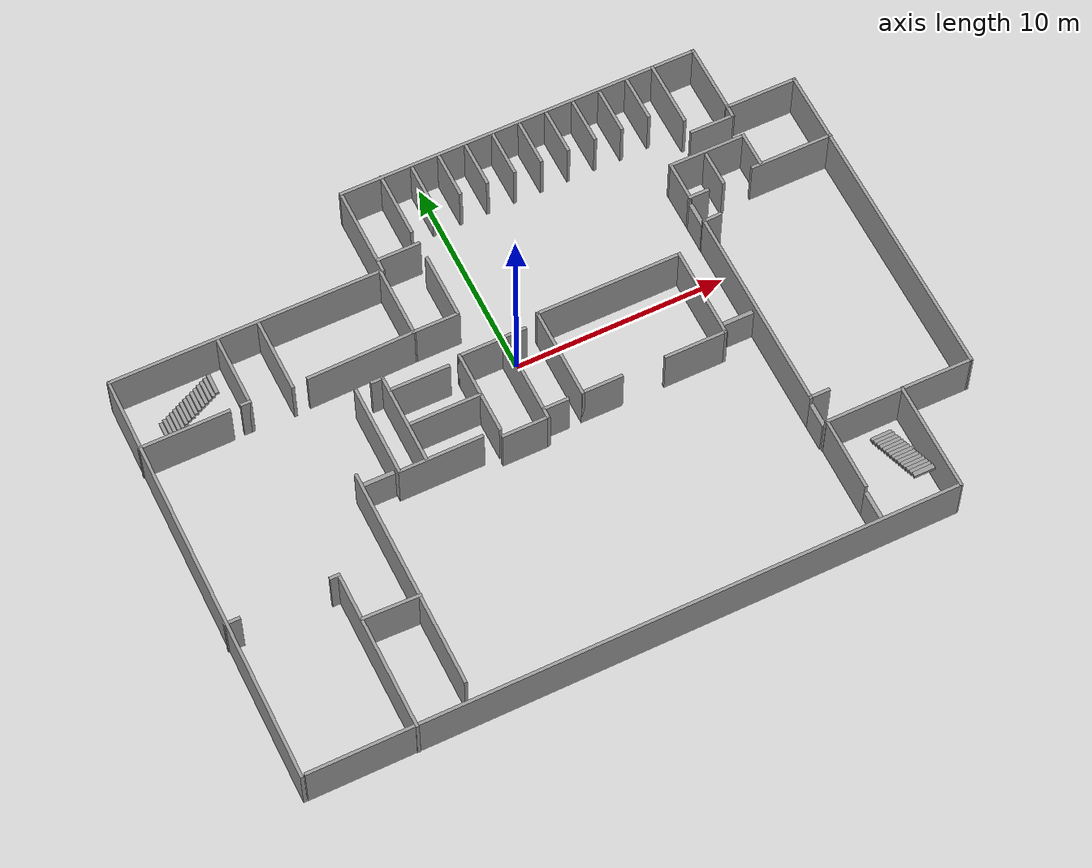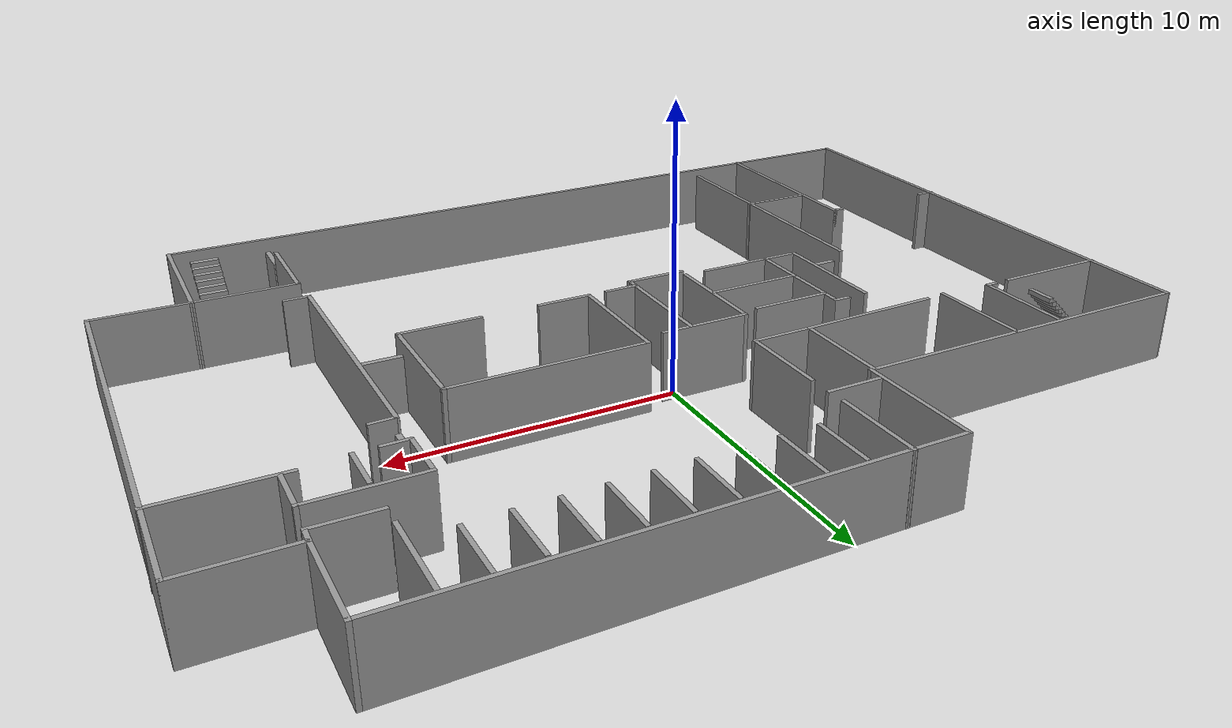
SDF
<sdf version="1.6">
 <model name="REPF">
  <pose>0.136394 -2.31263 0 0 -0 0</pose>
  <link name="Door_14">
   <collision name="Door_14_Collision">
    <geometry><box><size>1.54 0.2 2</size></box></geometry>
    <pose>0 0 1 0 -0 0</pose>
   </collision>
   <visual name="Door_14_Visual">
    <pose>0 0 1 0 -0 0</pose>
    <geometry><box><size>1.54 0.2 2</size></box></geometry>
    <material>
     <script><uri>file://media/materials/scripts/gazebo.material</uri><name>Gazebo/Grey</name></script>
    </material>
   </visual>
   <pose>9.87614 -11.4196 0 0 0 -1.57041</pose>
  </link>
  <link name="Door_15">
   <collision name="Door_15_Collision">
    <geometry><box><size>1.61 0.2 2</size></box></geometry>
    <pose>0 0 1 0 -0 0</pose>
   </collision>
   <visual name="Door_15_Visual">
    <pose>0 0 1 0 -0 0</pose>
    <geometry><box><size>1.61 0.2 2</size></box></geometry>
    <material>
     <script><uri>file://media/materials/scripts/gazebo.material</uri><name>Gazebo/Grey</name></script>
    </material>
   </visual>
   <pose>8.90711 -0.726906 0 0 -0 0</pose>
  </link>
  <link name="Door_16">
   <collision name="Door_16_Collision">
    <geometry><box><size>1.5325 0.2 2</size></box></geometry>
    <pose>0 0 1 0 -0 0</pose>
   </collision>
   <visual name="Door_16_Visual">
    <pose>0 0 1 0 -0 0</pose>
    <geometry><box><size>1.5325 0.2 2</size></box></geometry>
    <material>
     <script><uri>file://media/materials/scripts/gazebo.material</uri><name>Gazebo/Grey</name></script>
    </material>
   </visual>
   <pose>-8.28485 -1.07579 0 0 -0 3.13609</pose>
  </link>
  <link name="Door_17">
   <collision name="Door_17_Collision">
    <geometry><box><size>1.17772 0.2 2</size></box></geometry>
    <pose>0 0 1 0 -0 0</pose>
   </collision>
   <visual name="Door_17_Visual">
    <pose>0 0 1 0 -0 0</pose>
    <geometry><box><size>1.17772 0.2 2</size></box></geometry>
    <material>
     <script><uri>file://media/materials/scripts/gazebo.material</uri><name>Gazebo/Grey</name></script>
    </material>
   </visual>
   <pose>9.81582 -6.48242 0 0 0 -1.5708</pose>
  </link>
  <link name="Door_18">
   <collision name="Door_18_Collision">
    <geometry><box><size>1.20417 0.2 2</size></box></geometry>
    <pose>0 0 1 0 -0 0</pose>
   </collision>
   <visual name="Door_18_Visual">
    <pose>0 0 1 0 -0 0</pose>
    <geometry><box><size>1.20417 0.2 2</size></box></geometry>
    <material>
     <script><uri>file://media/materials/scripts/gazebo.material</uri><name>Gazebo/Grey</name></script>
    </material>
   </visual>
   <pose>9.81561 4.72577 0 0 0 -1.57209</pose>
  </link>
  <link name="Stairs_5">
   <visual name="Stairs_5_Visual_0">
    <pose>12.3958 -7.74275 0.083333 0 -0 0</pose>
    <geometry><box><size>1 0.233333 0.166667</size></box></geometry>
    <material>
     <script><uri>file://media/materials/scripts/gazebo.material</uri><name>Gazebo/Grey</name></script>
     <ambient>1 1 1 1</ambient>
    </material>
   </visual>
   <collision name="Stairs_5_Collision_0">
    <geometry><box><size>1 0.233333 0.166667</size></box></geometry>
    <pose>12.3958 -7.74275 0.083333 0 -0 0</pose>
   </collision>
   <visual name="Stairs_5_Visual_1">
    <pose>12.3958 -7.97608 0.25 0 -0 0</pose>
    <geometry><box><size>1 0.233333 0.166667</size></box></geometry>
    <material>
     <script><uri>file://media/materials/scripts/gazebo.material</uri><name>Gazebo/Grey</name></script>
     <ambient>1 1 1 1</ambient>
    </material>
   </visual>
   <collision name="Stairs_5_Collision_1">
    <geometry><box><size>1 0.233333 0.166667</size></box></geometry>
    <pose>12.3958 -7.97608 0.25 0 -0 0</pose>
   </collision>
   <visual name="Stairs_5_Visual_2">
    <pose>12.3958 -8.20942 0.416667 0 -0 0</pose>
    <geometry><box><size>1 0.233333 0.166667</size></box></geometry>
    <material>
     <script><uri>file://media/materials/scripts/gazebo.material</uri><name>Gazebo/Grey</name></script>
     <ambient>1 1 1 1</ambient>
    </material>
   </visual>
   <collision name="Stairs_5_Collision_2">
    <geometry><box><size>1 0.233333 0.166667</size></box></geometry>
    <pose>12.3958 -8.20942 0.416667 0 -0 0</pose>
   </collision>
   <visual name="Stairs_5_Visual_3">
    <pose>12.3958 -8.44275 0.583333 0 -0 0</pose>
    <geometry><box><size>1 0.233333 0.166667</size></box></geometry>
    <material>
     <script><uri>file://media/materials/scripts/gazebo.material</uri><name>Gazebo/Grey</name></script>
     <ambient>1 1 1 1</ambient>
    </material>
   </visual>
   <collision name="Stairs_5_Collision_3">
    <geometry><box><size>1 0.233333 0.166667</size></box></geometry>
    <pose>12.3958 -8.44275 0.583333 0 -0 0</pose>
   </collision>
   <visual name="Stairs_5_Visual_4">
    <pose>12.3958 -8.67608 0.75 0 -0 0</pose>
    <geometry><box><size>1 0.233333 0.166667</size></box></geometry>
    <material>
     <script><uri>file://media/materials/scripts/gazebo.material</uri><name>Gazebo/Grey</name></script>
     <ambient>1 1 1 1</ambient>
    </material>
   </visual>
   <collision name="Stairs_5_Collision_4">
    <geometry><box><size>1 0.233333 0.166667</size></box></geometry>
    <pose>12.3958 -8.67608 0.75 0 -0 0</pose>
   </collision>
   <visual name="Stairs_5_Visual_5">
    <pose>12.3958 -8.90942 0.916667 0 -0 0</pose>
    <geometry><box><size>1 0.233333 0.166667</size></box></geometry>
    <material>
     <script><uri>file://media/materials/scripts/gazebo.material</uri><name>Gazebo/Grey</name></script>
     <ambient>1 1 1 1</ambient>
    </material>
   </visual>
   <collision name="Stairs_5_Collision_5">
    <geometry><box><size>1 0.233333 0.166667</size></box></geometry>
    <pose>12.3958 -8.90942 0.916667 0 -0 0</pose>
   </collision>
   <visual name="Stairs_5_Visual_6">
    <pose>12.3958 -9.14275 1.08333 0 -0 0</pose>
    <geometry><box><size>1 0.233333 0.166667</size></box></geometry>
    <material>
     <script><uri>file://media/materials/scripts/gazebo.material</uri><name>Gazebo/Grey</name></script>
     <ambient>1 1 1 1</ambient>
    </material>
   </visual>
   <collision name="Stairs_5_Collision_6">
    <geometry><box><size>1 0.233333 0.166667</size></box></geometry>
    <pose>12.3958 -9.14275 1.08333 0 -0 0</pose>
   </collision>
   <visual name="Stairs_5_Visual_7">
    <pose>12.3958 -9.37608 1.25 0 -0 0</pose>
    <geometry><box><size>1 0.233333 0.166667</size></box></geometry>
    <material>
     <script><uri>file://media/materials/scripts/gazebo.material</uri><name>Gazebo/Grey</name></script>
     <ambient>1 1 1 1</ambient>
    </material>
   </visual>
   <collision name="Stairs_5_Collision_7">
    <geometry><box><size>1 0.233333 0.166667</size></box></geometry>
    <pose>12.3958 -9.37608 1.25 0 -0 0</pose>
   </collision>
   <visual name="Stairs_5_Visual_8">
    <pose>12.3958 -9.60942 1.41667 0 -0 0</pose>
    <geometry><box><size>1 0.233333 0.166667</size></box></geometry>
    <material>
     <script><uri>file://media/materials/scripts/gazebo.material</uri><name>Gazebo/Grey</name></script>
     <ambient>1 1 1 1</ambient>
    </material>
   </visual>
   <collision name="Stairs_5_Collision_8">
    <geometry><box><size>1 0.233333 0.166667</size></box></geometry>
    <pose>12.3958 -9.60942 1.41667 0 -0 0</pose>
   </collision>
   <visual name="Stairs_5_Visual_9">
    <pose>12.3958 -9.84275 1.58333 0 -0 0</pose>
    <geometry><box><size>1 0.233333 0.166667</size></box></geometry>
    <material>
     <script><uri>file://media/materials/scripts/gazebo.material</uri><name>Gazebo/Grey</name></script>
     <ambient>1 1 1 1</ambient>
    </material>
   </visual>
   <collision name="Stairs_5_Collision_9">
    <geometry><box><size>1 0.233333 0.166667</size></box></geometry>
    <pose>12.3958 -9.84275 1.58333 0 -0 0</pose>
   </collision>
   <visual name="Stairs_5_Visual_10">
    <pose>12.3958 -10.0761 1.75 0 -0 0</pose>
    <geometry><box><size>1 0.233333 0.166667</size></box></geometry>
    <material>
     <script><uri>file://media/materials/scripts/gazebo.material</uri><name>Gazebo/Grey</name></script>
     <ambient>1 1 1 1</ambient>
    </material>
   </visual>
   <collision name="Stairs_5_Collision_10">
    <geometry><box><size>1 0.233333 0.166667</size></box></geometry>
    <pose>12.3958 -10.0761 1.75 0 -0 0</pose>
   </collision>
   <visual name="Stairs_5_Visual_11">
    <pose>12.3958 -10.3094 1.91667 0 -0 0</pose>
    <geometry><box><size>1 0.233333 0.166667</size></box></geometry>
    <material>
     <script><uri>file://media/materials/scripts/gazebo.material</uri><name>Gazebo/Grey</name></script>
     <ambient>1 1 1 1</ambient>
    </material>
   </visual>
   <collision name="Stairs_5_Collision_11">
    <geometry><box><size>1 0.233333 0.166667</size></box></geometry>
    <pose>12.3958 -10.3094 1.91667 0 -0 0</pose>
   </collision>
   <visual name="Stairs_5_Visual_12">
    <pose>12.3958 -10.5427 2.08333 0 -0 0</pose>
    <geometry><box><size>1 0.233333 0.166667</size></box></geometry>
    <material>
     <script><uri>file://media/materials/scripts/gazebo.material</uri><name>Gazebo/Grey</name></script>
     <ambient>1 1 1 1</ambient>
    </material>
   </visual>
   <collision name="Stairs_5_Collision_12">
    <geometry><box><size>1 0.233333 0.166667</size></box></geometry>
    <pose>12.3958 -10.5427 2.08333 0 -0 0</pose>
   </collision>
   <visual name="Stairs_5_Visual_13">
    <pose>12.3958 -10.7761 2.25 0 -0 0</pose>
    <geometry><box><size>1 0.233333 0.166667</size></box></geometry>
    <material>
     <script><uri>file://media/materials/scripts/gazebo.material</uri><name>Gazebo/Grey</name></script>
     <ambient>1 1 1 1</ambient>
    </material>
   </visual>
   <collision name="Stairs_5_Collision_13">
    <geometry><box><size>1 0.233333 0.166667</size></box></geometry>
    <pose>12.3958 -10.7761 2.25 0 -0 0</pose>
   </collision>
   <visual name="Stairs_5_Visual_14">
    <pose>12.3958 -11.0094 2.41667 0 -0 0</pose>
    <geometry><box><size>1 0.233333 0.166667</size></box></geometry>
    <material>
     <script><uri>file://media/materials/scripts/gazebo.material</uri><name>Gazebo/Grey</name></script>
     <ambient>1 1 1 1</ambient>
    </material>
   </visual>
   <collision name="Stairs_5_Collision_14">
    <geometry><box><size>1 0.233333 0.166667</size></box></geometry>
    <pose>12.3958 -11.0094 2.41667 0 -0 0</pose>
   </collision>
  </link>
  <link name="Stairs_6">
   <visual name="Stairs_6_Visual_0">
    <pose>-15.1717 5.94079 0.083333 0 -0 1.5708</pose>
    <geometry><box><size>1 0.171652 0.166667</size></box></geometry>
    <material>
     <script><uri>file://media/materials/scripts/gazebo.material</uri><name>Gazebo/Grey</name></script>
     <ambient>1 1 1 1</ambient>
    </material>
   </visual>
   <collision name="Stairs_6_Collision_0">
    <geometry><box><size>1 0.171652 0.166667</size></box></geometry>
    <pose>-15.1717 5.94079 0.083333 0 -0 1.5708</pose>
   </collision>
   <visual name="Stairs_6_Visual_1">
    <pose>-15.0001 5.94079 0.25 0 -0 1.5708</pose>
    <geometry><box><size>1 0.171652 0.166667</size></box></geometry>
    <material>
     <script><uri>file://media/materials/scripts/gazebo.material</uri><name>Gazebo/Grey</name></script>
     <ambient>1 1 1 1</ambient>
    </material>
   </visual>
   <collision name="Stairs_6_Collision_1">
    <geometry><box><size>1 0.171652 0.166667</size></box></geometry>
    <pose>-15.0001 5.94079 0.25 0 -0 1.5708</pose>
   </collision>
   <visual name="Stairs_6_Visual_2">
    <pose>-14.8284 5.94079 0.416667 0 -0 1.5708</pose>
    <geometry><box><size>1 0.171652 0.166667</size></box></geometry>
    <material>
     <script><uri>file://media/materials/scripts/gazebo.material</uri><name>Gazebo/Grey</name></script>
     <ambient>1 1 1 1</ambient>
    </material>
   </visual>
   <collision name="Stairs_6_Collision_2">
    <geometry><box><size>1 0.171652 0.166667</size></box></geometry>
    <pose>-14.8284 5.94079 0.416667 0 -0 1.5708</pose>
   </collision>
   <visual name="Stairs_6_Visual_3">
    <pose>-14.6568 5.94079 0.583333 0 -0 1.5708</pose>
    <geometry><box><size>1 0.171652 0.166667</size></box></geometry>
    <material>
     <script><uri>file://media/materials/scripts/gazebo.material</uri><name>Gazebo/Grey</name></script>
     <ambient>1 1 1 1</ambient>
    </material>
   </visual>
   <collision name="Stairs_6_Collision_3">
    <geometry><box><size>1 0.171652 0.166667</size></box></geometry>
    <pose>-14.6568 5.94079 0.583333 0 -0 1.5708</pose>
   </collision>
   <visual name="Stairs_6_Visual_4">
    <pose>-14.4851 5.94079 0.75 0 -0 1.5708</pose>
    <geometry><box><size>1 0.171652 0.166667</size></box></geometry>
    <material>
     <script><uri>file://media/materials/scripts/gazebo.material</uri><name>Gazebo/Grey</name></script>
     <ambient>1 1 1 1</ambient>
    </material>
   </visual>
   <collision name="Stairs_6_Collision_4">
    <geometry><box><size>1 0.171652 0.166667</size></box></geometry>
    <pose>-14.4851 5.94079 0.75 0 -0 1.5708</pose>
   </collision>
   <visual name="Stairs_6_Visual_5">
    <pose>-14.3135 5.94079 0.916667 0 -0 1.5708</pose>
    <geometry><box><size>1 0.171652 0.166667</size></box></geometry>
    <material>
     <script><uri>file://media/materials/scripts/gazebo.material</uri><name>Gazebo/Grey</name></script>
     <ambient>1 1 1 1</ambient>
    </material>
   </visual>
   <collision name="Stairs_6_Collision_5">
    <geometry><box><size>1 0.171652 0.166667</size></box></geometry>
    <pose>-14.3135 5.94079 0.916667 0 -0 1.5708</pose>
   </collision>
   <visual name="Stairs_6_Visual_6">
    <pose>-14.1418 5.94079 1.08333 0 -0 1.5708</pose>
    <geometry><box><size>1 0.171652 0.166667</size></box></geometry>
    <material>
     <script><uri>file://media/materials/scripts/gazebo.material</uri><name>Gazebo/Grey</name></script>
     <ambient>1 1 1 1</ambient>
    </material>
   </visual>
   <collision name="Stairs_6_Collision_6">
    <geometry><box><size>1 0.171652 0.166667</size></box></geometry>
    <pose>-14.1418 5.94079 1.08333 0 -0 1.5708</pose>
   </collision>
   <visual name="Stairs_6_Visual_7">
    <pose>-13.9702 5.94079 1.25 0 -0 1.5708</pose>
    <geometry><box><size>1 0.171652 0.166667</size></box></geometry>
    <material>
     <script><uri>file://media/materials/scripts/gazebo.material</uri><name>Gazebo/Grey</name></script>
     <ambient>1 1 1 1</ambient>
    </material>
   </visual>
   <collision name="Stairs_6_Collision_7">
    <geometry><box><size>1 0.171652 0.166667</size></box></geometry>
    <pose>-13.9702 5.94079 1.25 0 -0 1.5708</pose>
   </collision>
   <visual name="Stairs_6_Visual_8">
    <pose>-13.7985 5.94079 1.41667 0 -0 1.5708</pose>
    <geometry><box><size>1 0.171652 0.166667</size></box></geometry>
    <material>
     <script><uri>file://media/materials/scripts/gazebo.material</uri><name>Gazebo/Grey</name></script>
     <ambient>1 1 1 1</ambient>
    </material>
   </visual>
   <collision name="Stairs_6_Collision_8">
    <geometry><box><size>1 0.171652 0.166667</size></box></geometry>
    <pose>-13.7985 5.94079 1.41667 0 -0 1.5708</pose>
   </collision>
   <visual name="Stairs_6_Visual_9">
    <pose>-13.6269 5.94079 1.58333 0 -0 1.5708</pose>
    <geometry><box><size>1 0.171652 0.166667</size></box></geometry>
    <material>
     <script><uri>file://media/materials/scripts/gazebo.material</uri><name>Gazebo/Grey</name></script>
     <ambient>1 1 1 1</ambient>
    </material>
   </visual>
   <collision name="Stairs_6_Collision_9">
    <geometry><box><size>1 0.171652 0.166667</size></box></geometry>
    <pose>-13.6269 5.94079 1.58333 0 -0 1.5708</pose>
   </collision>
   <visual name="Stairs_6_Visual_10">
    <pose>-13.4552 5.94079 1.75 0 -0 1.5708</pose>
    <geometry><box><size>1 0.171652 0.166667</size></box></geometry>
    <material>
     <script><uri>file://media/materials/scripts/gazebo.material</uri><name>Gazebo/Grey</name></script>
     <ambient>1 1 1 1</ambient>
    </material>
   </visual>
   <collision name="Stairs_6_Collision_10">
    <geometry><box><size>1 0.171652 0.166667</size></box></geometry>
    <pose>-13.4552 5.94079 1.75 0 -0 1.5708</pose>
   </collision>
   <visual name="Stairs_6_Visual_11">
    <pose>-13.2835 5.94079 1.91667 0 -0 1.5708</pose>
    <geometry><box><size>1 0.171652 0.166667</size></box></geometry>
    <material>
     <script><uri>file://media/materials/scripts/gazebo.material</uri><name>Gazebo/Grey</name></script>
     <ambient>1 1 1 1</ambient>
    </material>
   </visual>
   <collision name="Stairs_6_Collision_11">
    <geometry><box><size>1 0.171652 0.166667</size></box></geometry>
    <pose>-13.2835 5.94079 1.91667 0 -0 1.5708</pose>
   </collision>
   <visual name="Stairs_6_Visual_12">
    <pose>-13.1119 5.94079 2.08333 0 -0 1.5708</pose>
    <geometry><box><size>1 0.171652 0.166667</size></box></geometry>
    <material>
     <script><uri>file://media/materials/scripts/gazebo.material</uri><name>Gazebo/Grey</name></script>
     <ambient>1 1 1 1</ambient>
    </material>
   </visual>
   <collision name="Stairs_6_Collision_12">
    <geometry><box><size>1 0.171652 0.166667</size></box></geometry>
    <pose>-13.1119 5.94079 2.08333 0 -0 1.5708</pose>
   </collision>
   <visual name="Stairs_6_Visual_13">
    <pose>-12.9402 5.94079 2.25 0 -0 1.5708</pose>
    <geometry><box><size>1 0.171652 0.166667</size></box></geometry>
    <material>
     <script><uri>file://media/materials/scripts/gazebo.material</uri><name>Gazebo/Grey</name></script>
     <ambient>1 1 1 1</ambient>
    </material>
   </visual>
   <collision name="Stairs_6_Collision_13">
    <geometry><box><size>1 0.171652 0.166667</size></box></geometry>
    <pose>-12.9402 5.94079 2.25 0 -0 1.5708</pose>
   </collision>
   <visual name="Stairs_6_Visual_14">
    <pose>-12.7686 5.94079 2.41667 0 -0 1.5708</pose>
    <geometry><box><size>1 0.171652 0.166667</size></box></geometry>
    <material>
     <script><uri>file://media/materials/scripts/gazebo.material</uri><name>Gazebo/Grey</name></script>
     <ambient>1 1 1 1</ambient>
    </material>
   </visual>
   <collision name="Stairs_6_Collision_14">
    <geometry><box><size>1 0.171652 0.166667</size></box></geometry>
    <pose>-12.7686 5.94079 2.41667 0 -0 1.5708</pose>
   </collision>
  </link>
  <link name="Wall_124">
   <collision name="Wall_124_Collision">
    <geometry><box><size>30.25 0.15 2.5</size></box></geometry>
    <pose>0 0 1.25 0 -0 0</pose>
   </collision>
   <visual name="Wall_124_Visual">
    <pose>0 0 1.25 0 -0 0</pose>
    <geometry><box><size>30.25 0.15 2.5</size></box></geometry>
    <material>
     <script><uri>file://media/materials/scripts/gazebo.material</uri><name>Gazebo/Grey</name></script>
     <ambient>1 1 1 1</ambient>
    </material>
   </visual>
   <pose>-1.57381 -12.2797 0 0 -0 0</pose>
  </link>
  <link name="Wall_125">
   <collision name="Wall_125_Collision">
    <geometry><box><size>5.28501 0.15 2.5</size></box></geometry>
    <pose>0 0 1.25 0 -0 0</pose>
   </collision>
   <visual name="Wall_125_Visual">
    <pose>0 0 1.25 0 -0 0</pose>
    <geometry><box><size>5.28501 0.15 2.5</size></box></geometry>
    <material>
     <script><uri>file://media/materials/scripts/gazebo.material</uri><name>Gazebo/Grey</name></script>
     <ambient>1 1 1 1</ambient>
    </material>
   </visual>
   <pose>13.4849 -9.71218 0 0 -0 1.56739</pose>
  </link>
  <link name="Wall_126">
   <collision name="Wall_126_Collision">
    <geometry><box><size>3.48324 0.15 2.5</size></box></geometry>
    <pose>0 0 1.25 0 -0 0</pose>
   </collision>
   <visual name="Wall_126_Visual">
    <pose>0 0 1.25 0 -0 0</pose>
    <geometry><box><size>3.48324 0.15 2.5</size></box></geometry>
    <material>
     <script><uri>file://media/materials/scripts/gazebo.material</uri><name>Gazebo/Grey</name></script>
     <ambient>1 1 1 1</ambient>
    </material>
   </visual>
   <pose>15.1599 -7.16219 0 0 0 -0.010496</pose>
  </link>
  <link name="Wall_127">
   <collision name="Wall_127_Collision">
    <geometry><box><size>16.25 0.15 2.5</size></box></geometry>
    <pose>0 0 1.25 0 -0 0</pose>
   </collision>
   <visual name="Wall_127_Visual">
    <pose>0 0 1.25 0 -0 0</pose>
    <geometry><box><size>16.25 0.15 2.5</size></box></geometry>
    <material>
     <script><uri>file://media/materials/scripts/gazebo.material</uri><name>Gazebo/Grey</name></script>
     <ambient>1 1 1 1</ambient>
    </material>
   </visual>
   <pose>16.8262 0.870325 0 0 -0 1.5708</pose>
  </link>
  <link name="Wall_128">
   <collision name="Wall_128_Collision">
    <geometry><box><size>3.5 0.15 2.5</size></box></geometry>
    <pose>0 0 1.25 0 -0 0</pose>
   </collision>
   <visual name="Wall_128_Visual">
    <pose>0 0 1.25 0 -0 0</pose>
    <geometry><box><size>3.5 0.15 2.5</size></box></geometry>
    <material>
     <script><uri>file://media/materials/scripts/gazebo.material</uri><name>Gazebo/Grey</name></script>
     <ambient>1 1 1 1</ambient>
    </material>
   </visual>
   <pose>15.1512 8.92033 0 0 -0 3.14159</pose>
  </link>
  <link name="Wall_129">
   <collision name="Wall_129_Collision">
    <geometry><box><size>3.5 0.15 2.5</size></box></geometry>
    <pose>0 0 1.25 0 -0 0</pose>
   </collision>
   <visual name="Wall_129_Visual">
    <pose>0 0 1.25 0 -0 0</pose>
    <geometry><box><size>3.5 0.15 2.5</size></box></geometry>
    <material>
     <script><uri>file://media/materials/scripts/gazebo.material</uri><name>Gazebo/Grey</name></script>
     <ambient>1 1 1 1</ambient>
    </material>
   </visual>
   <pose>13.4762 10.5953 0 0 -0 1.5708</pose>
  </link>
  <link name="Wall_130">
   <collision name="Wall_130_Collision">
    <geometry><box><size>17.5 0.15 2.5</size></box></geometry>
    <pose>0 0 1.25 0 -0 0</pose>
   </collision>
   <visual name="Wall_130_Visual">
    <pose>0 0 1.25 0 -0 0</pose>
    <geometry><box><size>17.5 0.15 2.5</size></box></geometry>
    <material>
     <script><uri>file://media/materials/scripts/gazebo.material</uri><name>Gazebo/Grey</name></script>
     <ambient>1 1 1 1</ambient>
    </material>
   </visual>
   <pose>4.80119 12.2703 0 0 -0 3.14159</pose>
  </link>
  <link name="Wall_131">
   <collision name="Wall_131_Collision">
    <geometry><box><size>4.5 0.15 2.5</size></box></geometry>
    <pose>0 0 1.25 0 -0 0</pose>
   </collision>
   <visual name="Wall_131_Visual">
    <pose>0 0 1.25 0 -0 0</pose>
    <geometry><box><size>4.5 0.15 2.5</size></box></geometry>
    <material>
     <script><uri>file://media/materials/scripts/gazebo.material</uri><name>Gazebo/Grey</name></script>
     <ambient>1 1 1 1</ambient>
    </material>
   </visual>
   <pose>-3.87381 10.0953 0 0 0 -1.5708</pose>
  </link>
  <link name="Wall_132">
   <collision name="Wall_132_Collision">
    <geometry><box><size>13 0.15 2.5</size></box></geometry>
    <pose>0 0 1.25 0 -0 0</pose>
   </collision>
   <visual name="Wall_132_Visual">
    <pose>0 0 1.25 0 -0 0</pose>
    <geometry><box><size>13 0.15 2.5</size></box></geometry>
    <material>
     <script><uri>file://media/materials/scripts/gazebo.material</uri><name>Gazebo/Grey</name></script>
     <ambient>1 1 1 1</ambient>
    </material>
   </visual>
   <pose>-10.2988 7.92033 0 0 -0 3.14159</pose>
  </link>
  <link name="Wall_133">
   <collision name="Wall_133_Collision">
    <geometry><box><size>20.3501 0.15 2.5</size></box></geometry>
    <pose>0 0 1.25 0 -0 0</pose>
   </collision>
   <visual name="Wall_133_Visual">
    <pose>0 0 1.25 0 -0 0</pose>
    <geometry><box><size>20.3501 0.15 2.5</size></box></geometry>
    <material>
     <script><uri>file://media/materials/scripts/gazebo.material</uri><name>Gazebo/Grey</name></script>
     <ambient>1 1 1 1</ambient>
    </material>
   </visual>
   <pose>-16.7787 -2.17968 0 0 0 -1.57624</pose>
  </link>
  <link name="Wall_138">
   <collision name="Wall_138_Collision">
    <geometry><box><size>0.75 0.15 2.5</size></box></geometry>
    <pose>0 0 1.25 0 -0 0</pose>
   </collision>
   <visual name="Wall_138_Visual">
    <pose>0 0 1.25 0 -0 0</pose>
    <geometry><box><size>0.75 0.15 2.5</size></box></geometry>
    <material>
     <script><uri>file://media/materials/scripts/gazebo.material</uri><name>Gazebo/Grey</name></script>
     <ambient>1 1 1 1</ambient>
    </material>
   </visual>
   <pose>-16.5471 -4.71747 0 0 -0 0</pose>
  </link>
  <link name="Wall_140">
   <collision name="Wall_140_Collision">
    <geometry><box><size>0.5 0.15 2.5</size></box></geometry>
    <pose>0 0 1.25 0 -0 0</pose>
   </collision>
   <visual name="Wall_140_Visual">
    <pose>0 0 1.25 0 -0 0</pose>
    <geometry><box><size>0.5 0.15 2.5</size></box></geometry>
    <material>
     <script><uri>file://media/materials/scripts/gazebo.material</uri><name>Gazebo/Grey</name></script>
     <ambient>1 1 1 1</ambient>
    </material>
   </visual>
   <pose>-11.8985 -4.70432 0 0 -0 0</pose>
  </link>
  <link name="Wall_141">
   <collision name="Wall_141_Collision">
    <geometry><box><size>7.75 0.15 2.5</size></box></geometry>
    <pose>0 0 1.25 0 -0 0</pose>
   </collision>
   <visual name="Wall_141_Visual">
    <pose>0 0 1.25 0 -0 0</pose>
    <geometry><box><size>7.75 0.15 2.5</size></box></geometry>
    <material>
     <script><uri>file://media/materials/scripts/gazebo.material</uri><name>Gazebo/Grey</name></script>
     <ambient>1 1 1 1</ambient>
    </material>
   </visual>
   <pose>-11.7235 -8.50432 0 0 0 -1.5708</pose>
  </link>
  <link name="Wall_145">
   <collision name="Wall_145_Collision">
    <geometry><box><size>2.75 0.15 2.5</size></box></geometry>
    <pose>0 0 1.25 0 -0 0</pose>
   </collision>
   <visual name="Wall_145_Visual">
    <pose>0 0 1.25 0 -0 0</pose>
    <geometry><box><size>2.75 0.15 2.5</size></box></geometry>
    <material>
     <script><uri>file://media/materials/scripts/gazebo.material</uri><name>Gazebo/Grey</name></script>
     <ambient>1 1 1 1</ambient>
    </material>
   </visual>
   <pose>-10.3878 -7.0019 0 0 0 -0.026901</pose>
  </link>
  <link name="Wall_149">
   <collision name="Wall_149_Collision">
    <geometry><box><size>10.75 0.15 2.5</size></box></geometry>
    <pose>0 0 1.25 0 -0 0</pose>
   </collision>
   <visual name="Wall_149_Visual">
    <pose>0 0 1.25 0 -0 0</pose>
    <geometry><box><size>10.75 0.15 2.5</size></box></geometry>
    <material>
     <script><uri>file://media/materials/scripts/gazebo.material</uri><name>Gazebo/Grey</name></script>
     <ambient>1 1 1 1</ambient>
    </material>
   </visual>
   <pose>-9.11763 -6.07786 0 0 0 -1.5708</pose>
  </link>
  <link name="Wall_151">
   <collision name="Wall_151_Collision">
    <geometry><box><size>3 0.15 2.5</size></box></geometry>
    <pose>0 0 1.25 0 -0 0</pose>
   </collision>
   <visual name="Wall_151_Visual">
    <pose>0 0 1.25 0 -0 0</pose>
    <geometry><box><size>3 0.15 2.5</size></box></geometry>
    <material>
     <script><uri>file://media/materials/scripts/gazebo.material</uri><name>Gazebo/Grey</name></script>
     <ambient>1 1 1 1</ambient>
    </material>
   </visual>
   <pose>6.61332 -1.34621 0 0 -0 0</pose>
  </link>
  <link name="Wall_152">
   <collision name="Wall_152_Collision">
    <geometry><box><size>4.5 0.15 2.5</size></box></geometry>
    <pose>0 0 1.25 0 -0 0</pose>
   </collision>
   <visual name="Wall_152_Visual">
    <pose>0 0 1.25 0 -0 0</pose>
    <geometry><box><size>4.5 0.15 2.5</size></box></geometry>
    <material>
     <script><uri>file://media/materials/scripts/gazebo.material</uri><name>Gazebo/Grey</name></script>
     <ambient>1 1 1 1</ambient>
    </material>
   </visual>
   <pose>8.03832 0.828791 0 0 -0 1.5708</pose>
  </link>
  <link name="Wall_153">
   <collision name="Wall_153_Collision">
    <geometry><box><size>7 0.15 2.5</size></box></geometry>
    <pose>0 0 1.25 0 -0 0</pose>
   </collision>
   <visual name="Wall_153_Visual">
    <pose>0 0 1.25 0 -0 0</pose>
    <geometry><box><size>7 0.15 2.5</size></box></geometry>
    <material>
     <script><uri>file://media/materials/scripts/gazebo.material</uri><name>Gazebo/Grey</name></script>
     <ambient>1 1 1 1</ambient>
    </material>
   </visual>
   <pose>4.61332 3.00379 0 0 -0 3.14159</pose>
  </link>
  <link name="Wall_154">
   <collision name="Wall_154_Collision">
    <geometry><box><size>4.5 0.15 2.5</size></box></geometry>
    <pose>0 0 1.25 0 -0 0</pose>
   </collision>
   <visual name="Wall_154_Visual">
    <pose>0 0 1.25 0 -0 0</pose>
    <geometry><box><size>4.5 0.15 2.5</size></box></geometry>
    <material>
     <script><uri>file://media/materials/scripts/gazebo.material</uri><name>Gazebo/Grey</name></script>
     <ambient>1 1 1 1</ambient>
    </material>
   </visual>
   <pose>1.18833 0.828791 0 0 0 -1.5708</pose>
  </link>
  <link name="Wall_155">
   <collision name="Wall_155_Collision">
    <geometry><box><size>2 0.15 2.5</size></box></geometry>
    <pose>0 0 1.25 0 -0 0</pose>
   </collision>
   <visual name="Wall_155_Visual">
    <pose>0 0 1.25 0 -0 0</pose>
    <geometry><box><size>2 0.15 2.5</size></box></geometry>
    <material>
     <script><uri>file://media/materials/scripts/gazebo.material</uri><name>Gazebo/Grey</name></script>
     <ambient>1 1 1 1</ambient>
    </material>
   </visual>
   <pose>2.11333 -1.34621 0 0 -0 0</pose>
  </link>
  <link name="Wall_158">
   <collision name="Wall_158_Collision">
    <geometry><box><size>4.5 0.15 2.5</size></box></geometry>
    <pose>0 0 1.25 0 -0 0</pose>
   </collision>
   <visual name="Wall_158_Visual">
    <pose>0 0 1.25 0 -0 0</pose>
    <geometry><box><size>4.5 0.15 2.5</size></box></geometry>
    <material>
     <script><uri>file://media/materials/scripts/gazebo.material</uri><name>Gazebo/Grey</name></script>
     <ambient>1 1 1 1</ambient>
    </material>
   </visual>
   <pose>-7.42029 0.782125 0 0 0 -1.5708</pose>
  </link>
  <link name="Wall_159">
   <collision name="Wall_159_Collision">
    <geometry><box><size>4 0.15 2.5</size></box></geometry>
    <pose>0 0 1.25 0 -0 0</pose>
   </collision>
   <visual name="Wall_159_Visual">
    <pose>0 0 1.25 0 -0 0</pose>
    <geometry><box><size>4 0.15 2.5</size></box></geometry>
    <material>
     <script><uri>file://media/materials/scripts/gazebo.material</uri><name>Gazebo/Grey</name></script>
     <ambient>1 1 1 1</ambient>
    </material>
   </visual>
   <pose>-5.49529 -1.39288 0 0 -0 0</pose>
  </link>
  <link name="Wall_162">
   <collision name="Wall_162_Collision">
    <geometry><box><size>3.25 0.15 2.5</size></box></geometry>
    <pose>0 0 1.25 0 -0 0</pose>
   </collision>
   <visual name="Wall_162_Visual">
    <pose>0 0 1.25 0 -0 0</pose>
    <geometry><box><size>3.25 0.15 2.5</size></box></geometry>
    <material>
     <script><uri>file://media/materials/scripts/gazebo.material</uri><name>Gazebo/Grey</name></script>
     <ambient>1 1 1 1</ambient>
    </material>
   </visual>
   <pose>-1.18113 2.5789 0 0 -0 3.14159</pose>
  </link>
  <link name="Wall_163">
   <collision name="Wall_163_Collision">
    <geometry><box><size>4.12948 0.15 2.5</size></box></geometry>
    <pose>0 0 1.25 0 -0 0</pose>
   </collision>
   <visual name="Wall_163_Visual">
    <pose>0 0 1.25 0 -0 0</pose>
    <geometry><box><size>4.12948 0.15 2.5</size></box></geometry>
    <material>
     <script><uri>file://media/materials/scripts/gazebo.material</uri><name>Gazebo/Grey</name></script>
     <ambient>1 1 1 1</ambient>
    </material>
   </visual>
   <pose>-2.73059 0.589199 0 0 0 -1.57052</pose>
  </link>
  <link name="Wall_165">
   <collision name="Wall_165_Collision">
    <geometry><box><size>4.5 0.15 2.5</size></box></geometry>
    <pose>0 0 1.25 0 -0 0</pose>
   </collision>
   <visual name="Wall_165_Visual">
    <pose>0 0 1.25 0 -0 0</pose>
    <geometry><box><size>4.5 0.15 2.5</size></box></geometry>
    <material>
     <script><uri>file://media/materials/scripts/gazebo.material</uri><name>Gazebo/Grey</name></script>
     <ambient>1 1 1 1</ambient>
    </material>
   </visual>
   <pose>-6.14912 0.849867 0 0 0 -1.5708</pose>
  </link>
  <link name="Wall_167">
   <collision name="Wall_167_Collision">
    <geometry><box><size>0.641708 0.15 2.5</size></box></geometry>
    <pose>0 0 1.25 0 -0 0</pose>
   </collision>
   <visual name="Wall_167_Visual">
    <pose>0 0 1.25 0 -0 0</pose>
    <geometry><box><size>0.641708 0.15 2.5</size></box></geometry>
    <material>
     <script><uri>file://media/materials/scripts/gazebo.material</uri><name>Gazebo/Grey</name></script>
     <ambient>1 1 1 1</ambient>
    </material>
   </visual>
   <pose>-6.39497 3.02487 0 0 -0 0</pose>
  </link>
  <link name="Wall_169">
   <collision name="Wall_169_Collision">
    <geometry><box><size>2.88298 0.15 2.5</size></box></geometry>
    <pose>0 0 1.25 0 -0 0</pose>
   </collision>
   <visual name="Wall_169_Visual">
    <pose>0 0 1.25 0 -0 0</pose>
    <geometry><box><size>2.88298 0.15 2.5</size></box></geometry>
    <material>
     <script><uri>file://media/materials/scripts/gazebo.material</uri><name>Gazebo/Grey</name></script>
     <ambient>1 1 1 1</ambient>
    </material>
   </visual>
   <pose>-4.74833 2.34448 0 0 0 -0.004184</pose>
  </link>
  <link name="Wall_171">
   <collision name="Wall_171_Collision">
    <geometry><box><size>3.5 0.15 2.5</size></box></geometry>
    <pose>0 0 1.25 0 -0 0</pose>
   </collision>
   <visual name="Wall_171_Visual">
    <pose>0 0 1.25 0 -0 0</pose>
    <geometry><box><size>3.5 0.15 2.5</size></box></geometry>
    <material>
     <script><uri>file://media/materials/scripts/gazebo.material</uri><name>Gazebo/Grey</name></script>
     <ambient>1 1 1 1</ambient>
    </material>
   </visual>
   <pose>-4.47412 0.474848 0 0 -0 0</pose>
  </link>
  <link name="Wall_173">
   <collision name="Wall_173_Collision">
    <geometry><box><size>4.5 0.15 2.5</size></box></geometry>
    <pose>0 0 1.25 0 -0 0</pose>
   </collision>
   <visual name="Wall_173_Visual">
    <pose>0 0 1.25 0 -0 0</pose>
    <geometry><box><size>4.5 0.15 2.5</size></box></geometry>
    <material>
     <script><uri>file://media/materials/scripts/gazebo.material</uri><name>Gazebo/Grey</name></script>
     <ambient>1 1 1 1</ambient>
    </material>
   </visual>
   <pose>-0.648854 0.392465 0 0 0 -1.5708</pose>
  </link>
  <link name="Wall_174">
   <collision name="Wall_174_Collision">
    <geometry><box><size>2.25 0.15 2.5</size></box></geometry>
    <pose>0 0 1.25 0 -0 0</pose>
   </collision>
   <visual name="Wall_174_Visual">
    <pose>0 0 1.25 0 -0 0</pose>
    <geometry><box><size>2.25 0.15 2.5</size></box></geometry>
    <material>
     <script><uri>file://media/materials/scripts/gazebo.material</uri><name>Gazebo/Grey</name></script>
     <ambient>1 1 1 1</ambient>
    </material>
   </visual>
   <pose>-1.69885 -1.78253 0 0 -0 3.14159</pose>
  </link>
  <link name="Wall_176">
   <collision name="Wall_176_Collision">
    <geometry><box><size>1.25 0.15 2.5</size></box></geometry>
    <pose>0 0 1.25 0 -0 0</pose>
   </collision>
   <visual name="Wall_176_Visual">
    <pose>0 0 1.25 0 -0 0</pose>
    <geometry><box><size>1.25 0.15 2.5</size></box></geometry>
    <material>
     <script><uri>file://media/materials/scripts/gazebo.material</uri><name>Gazebo/Grey</name></script>
     <ambient>1 1 1 1</ambient>
    </material>
   </visual>
   <pose>-0.075984 -1.35476 0 0 -0 0</pose>
  </link>
  <link name="Wall_178">
   <collision name="Wall_178_Collision">
    <geometry><box><size>3.25 0.15 2.5</size></box></geometry>
    <pose>0 0 1.25 0 -0 0</pose>
   </collision>
   <visual name="Wall_178_Visual">
    <pose>0 0 1.25 0 -0 0</pose>
    <geometry><box><size>3.25 0.15 2.5</size></box></geometry>
    <material>
     <script><uri>file://media/materials/scripts/gazebo.material</uri><name>Gazebo/Grey</name></script>
     <ambient>1 1 1 1</ambient>
    </material>
   </visual>
   <pose>-1.89042 6.05919 0 0 0 -1.5708</pose>
  </link>
  <link name="Wall_179">
   <collision name="Wall_179_Collision">
    <geometry><box><size>2.25 0.15 2.5</size></box></geometry>
    <pose>0 0 1.25 0 -0 0</pose>
   </collision>
   <visual name="Wall_179_Visual">
    <pose>0 0 1.25 0 -0 0</pose>
    <geometry><box><size>2.25 0.15 2.5</size></box></geometry>
    <material>
     <script><uri>file://media/materials/scripts/gazebo.material</uri><name>Gazebo/Grey</name></script>
     <ambient>1 1 1 1</ambient>
    </material>
   </visual>
   <pose>-2.94042 4.50919 0 0 -0 3.14159</pose>
  </link>
  <link name="Wall_180">
   <collision name="Wall_180_Collision">
    <geometry><box><size>3.5 0.15 2.5</size></box></geometry>
    <pose>0 0 1.25 0 -0 0</pose>
   </collision>
   <visual name="Wall_180_Visual">
    <pose>0 0 1.25 0 -0 0</pose>
    <geometry><box><size>3.5 0.15 2.5</size></box></geometry>
    <material>
     <script><uri>file://media/materials/scripts/gazebo.material</uri><name>Gazebo/Grey</name></script>
     <ambient>1 1 1 1</ambient>
    </material>
   </visual>
   <pose>-3.99042 6.18419 0 0 -0 1.5708</pose>
  </link>
  <link name="Wall_182">
   <collision name="Wall_182_Collision">
    <geometry><box><size>3.25 0.15 2.5</size></box></geometry>
    <pose>0 0 1.25 0 -0 0</pose>
   </collision>
   <visual name="Wall_182_Visual">
    <pose>0 0 1.25 0 -0 0</pose>
    <geometry><box><size>3.25 0.15 2.5</size></box></geometry>
    <material>
     <script><uri>file://media/materials/scripts/gazebo.material</uri><name>Gazebo/Grey</name></script>
     <ambient>1 1 1 1</ambient>
    </material>
   </visual>
   <pose>-1.92499 10.7285 0 0 -0 1.5708</pose>
  </link>
  <link name="Wall_183">
   <collision name="Wall_183_Collision">
    <geometry><box><size>0.227976 0.15 2.5</size></box></geometry>
    <pose>0 0 1.25 0 -0 0</pose>
   </collision>
   <visual name="Wall_183_Visual">
    <pose>0 0 1.25 0 -0 0</pose>
    <geometry><box><size>0.227976 0.15 2.5</size></box></geometry>
    <material>
     <script><uri>file://media/materials/scripts/gazebo.material</uri><name>Gazebo/Grey</name></script>
     <ambient>1 1 1 1</ambient>
    </material>
   </visual>
   <pose>-1.8989 12.2609 0 0 0 -0.468739</pose>
  </link>
  <link name="Wall_185">
   <collision name="Wall_185_Collision">
    <geometry><box><size>2.08255 0.15 2.5</size></box></geometry>
    <pose>0 0 1.25 0 -0 0</pose>
   </collision>
   <visual name="Wall_185_Visual">
    <pose>0 0 1.25 0 -0 0</pose>
    <geometry><box><size>2.08255 0.15 2.5</size></box></geometry>
    <material>
     <script><uri>file://media/materials/scripts/gazebo.material</uri><name>Gazebo/Grey</name></script>
     <ambient>1 1 1 1</ambient>
    </material>
   </visual>
   <pose>-2.87012 8.47861 0 0 0 -0.00126</pose>
  </link>
  <link name="Wall_188">
   <collision name="Wall_188_Collision">
    <geometry><box><size>4.25 0.15 2.5</size></box></geometry>
    <pose>0 0 1.25 0 -0 0</pose>
   </collision>
   <visual name="Wall_188_Visual">
    <pose>0 0 1.25 0 -0 0</pose>
    <geometry><box><size>4.25 0.15 2.5</size></box></geometry>
    <material>
     <script><uri>file://media/materials/scripts/gazebo.material</uri><name>Gazebo/Grey</name></script>
     <ambient>1 1 1 1</ambient>
    </material>
   </visual>
   <pose>-14.7306 4.42471 0 0 -0 0</pose>
  </link>
  <link name="Wall_190">
   <collision name="Wall_190_Collision">
    <geometry><box><size>0.5 0.15 2.5</size></box></geometry>
    <pose>0 0 1.25 0 -0 0</pose>
   </collision>
   <visual name="Wall_190_Visual">
    <pose>0 0 1.25 0 -0 0</pose>
    <geometry><box><size>0.5 0.15 2.5</size></box></geometry>
    <material>
     <script><uri>file://media/materials/scripts/gazebo.material</uri><name>Gazebo/Grey</name></script>
     <ambient>1 1 1 1</ambient>
    </material>
   </visual>
   <pose>-11.8843 4.45116 0 0 -0 0</pose>
  </link>
  <link name="Wall_191">
   <collision name="Wall_191_Collision">
    <geometry><box><size>3.5 0.15 2.5</size></box></geometry>
    <pose>0 0 1.25 0 -0 0</pose>
   </collision>
   <visual name="Wall_191_Visual">
    <pose>0 0 1.25 0 -0 0</pose>
    <geometry><box><size>3.5 0.15 2.5</size></box></geometry>
    <material>
     <script><uri>file://media/materials/scripts/gazebo.material</uri><name>Gazebo/Grey</name></script>
     <ambient>1 1 1 1</ambient>
    </material>
   </visual>
   <pose>-11.7093 6.12616 0 0 -0 1.5708</pose>
  </link>
  <link name="Wall_193">
   <collision name="Wall_193_Collision">
    <geometry><box><size>3.72085 0.15 2.5</size></box></geometry>
    <pose>0 0 1.25 0 -0 0</pose>
   </collision>
   <visual name="Wall_193_Visual">
    <pose>0 0 1.25 0 -0 0</pose>
    <geometry><box><size>3.72085 0.15 2.5</size></box></geometry>
    <material>
     <script><uri>file://media/materials/scripts/gazebo.material</uri><name>Gazebo/Grey</name></script>
     <ambient>1 1 1 1</ambient>
    </material>
   </visual>
   <pose>-9.77796 6.11751 0 0 0 -1.56709</pose>
  </link>
  <link name="Wall_195">
   <collision name="Wall_195_Collision">
    <geometry><box><size>5.15161 0.15 2.5</size></box></geometry>
    <pose>0 0 1.25 0 -0 0</pose>
   </collision>
   <visual name="Wall_195_Visual">
    <pose>0 0 1.25 0 -0 0</pose>
    <geometry><box><size>5.15161 0.15 2.5</size></box></geometry>
    <material>
     <script><uri>file://media/materials/scripts/gazebo.material</uri><name>Gazebo/Grey</name></script>
     <ambient>1 1 1 1</ambient>
    </material>
   </visual>
   <pose>-6.49075 4.46034 0 0 -0 0.019534</pose>
  </link>
  <link name="Wall_198">
   <collision name="Wall_198_Collision">
    <geometry><box><size>2.25 0.15 2.5</size></box></geometry>
    <pose>0 0 1.25 0 -0 0</pose>
   </collision>
   <visual name="Wall_198_Visual">
    <pose>0 0 1.25 0 -0 0</pose>
    <geometry><box><size>2.25 0.15 2.5</size></box></geometry>
    <material>
     <script><uri>file://media/materials/scripts/gazebo.material</uri><name>Gazebo/Grey</name></script>
     <ambient>1 1 1 1</ambient>
    </material>
   </visual>
   <pose>-0.491551 11.053 0 0 -0 1.5708</pose>
  </link>
  <link name="Wall_200">
   <collision name="Wall_200_Collision">
    <geometry><box><size>2.25 0.15 2.5</size></box></geometry>
    <pose>0 0 1.25 0 -0 0</pose>
   </collision>
   <visual name="Wall_200_Visual">
    <pose>0 0 1.25 0 -0 0</pose>
    <geometry><box><size>2.25 0.15 2.5</size></box></geometry>
    <material>
     <script><uri>file://media/materials/scripts/gazebo.material</uri><name>Gazebo/Grey</name></script>
     <ambient>1 1 1 1</ambient>
    </material>
   </visual>
   <pose>0.83161 11.0682 0 0 -0 1.5708</pose>
  </link>
  <link name="Wall_203">
   <collision name="Wall_203_Collision">
    <geometry><box><size>2.25 0.15 2.5</size></box></geometry>
    <pose>0 0 1.25 0 -0 0</pose>
   </collision>
   <visual name="Wall_203_Visual">
    <pose>0 0 1.25 0 -0 0</pose>
    <geometry><box><size>2.25 0.15 2.5</size></box></geometry>
    <material>
     <script><uri>file://media/materials/scripts/gazebo.material</uri><name>Gazebo/Grey</name></script>
     <ambient>1 1 1 1</ambient>
    </material>
   </visual>
   <pose>2.13956 11.0682 0 0 -0 1.5708</pose>
  </link>
  <link name="Wall_205">
   <collision name="Wall_205_Collision">
    <geometry><box><size>2.25 0.15 2.5</size></box></geometry>
    <pose>0 0 1.25 0 -0 0</pose>
   </collision>
   <visual name="Wall_205_Visual">
    <pose>0 0 1.25 0 -0 0</pose>
    <geometry><box><size>2.25 0.15 2.5</size></box></geometry>
    <material>
     <script><uri>file://media/materials/scripts/gazebo.material</uri><name>Gazebo/Grey</name></script>
     <ambient>1 1 1 1</ambient>
    </material>
   </visual>
   <pose>3.46272 11.053 0 0 -0 1.5708</pose>
  </link>
  <link name="Wall_207">
   <collision name="Wall_207_Collision">
    <geometry><box><size>2.25 0.15 2.5</size></box></geometry>
    <pose>0 0 1.25 0 -0 0</pose>
   </collision>
   <visual name="Wall_207_Visual">
    <pose>0 0 1.25 0 -0 0</pose>
    <geometry><box><size>2.25 0.15 2.5</size></box></geometry>
    <material>
     <script><uri>file://media/materials/scripts/gazebo.material</uri><name>Gazebo/Grey</name></script>
     <ambient>1 1 1 1</ambient>
    </material>
   </visual>
   <pose>4.77068 11.053 0 0 -0 1.5708</pose>
  </link>
  <link name="Wall_209">
   <collision name="Wall_209_Collision">
    <geometry><box><size>2.25 0.15 2.5</size></box></geometry>
    <pose>0 0 1.25 0 -0 0</pose>
   </collision>
   <visual name="Wall_209_Visual">
    <pose>0 0 1.25 0 -0 0</pose>
    <geometry><box><size>2.25 0.15 2.5</size></box></geometry>
    <material>
     <script><uri>file://media/materials/scripts/gazebo.material</uri><name>Gazebo/Grey</name></script>
     <ambient>1 1 1 1</ambient>
    </material>
   </visual>
   <pose>6.09384 11.053 0 0 -0 1.5708</pose>
  </link>
  <link name="Wall_211">
   <collision name="Wall_211_Collision">
    <geometry><box><size>2.25 0.15 2.5</size></box></geometry>
    <pose>0 0 1.25 0 -0 0</pose>
   </collision>
   <visual name="Wall_211_Visual">
    <pose>0 0 1.25 0 -0 0</pose>
    <geometry><box><size>2.25 0.15 2.5</size></box></geometry>
    <material>
     <script><uri>file://media/materials/scripts/gazebo.material</uri><name>Gazebo/Grey</name></script>
     <ambient>1 1 1 1</ambient>
    </material>
   </visual>
   <pose>7.417 11.053 0 0 -0 1.5708</pose>
  </link>
  <link name="Wall_213">
   <collision name="Wall_213_Collision">
    <geometry><box><size>2.25 0.15 2.5</size></box></geometry>
    <pose>0 0 1.25 0 -0 0</pose>
   </collision>
   <visual name="Wall_213_Visual">
    <pose>0 0 1.25 0 -0 0</pose>
    <geometry><box><size>2.25 0.15 2.5</size></box></geometry>
    <material>
     <script><uri>file://media/materials/scripts/gazebo.material</uri><name>Gazebo/Grey</name></script>
     <ambient>1 1 1 1</ambient>
    </material>
   </visual>
   <pose>8.72495 11.0226 0 0 -0 1.5708</pose>
  </link>
  <link name="Wall_215">
   <collision name="Wall_215_Collision">
    <geometry><box><size>2.25 0.15 2.5</size></box></geometry>
    <pose>0 0 1.25 0 -0 0</pose>
   </collision>
   <visual name="Wall_215_Visual">
    <pose>0 0 1.25 0 -0 0</pose>
    <geometry><box><size>2.25 0.15 2.5</size></box></geometry>
    <material>
     <script><uri>file://media/materials/scripts/gazebo.material</uri><name>Gazebo/Grey</name></script>
     <ambient>1 1 1 1</ambient>
    </material>
   </visual>
   <pose>10.0937 11.0682 0 0 -0 1.5708</pose>
  </link>
  <link name="Wall_217">
   <collision name="Wall_217_Collision">
    <geometry><box><size>3.25 0.15 2.5</size></box></geometry>
    <pose>0 0 1.25 0 -0 0</pose>
   </collision>
   <visual name="Wall_217_Visual">
    <pose>0 0 1.25 0 -0 0</pose>
    <geometry><box><size>3.25 0.15 2.5</size></box></geometry>
    <material>
     <script><uri>file://media/materials/scripts/gazebo.material</uri><name>Gazebo/Grey</name></script>
     <ambient>1 1 1 1</ambient>
    </material>
   </visual>
   <pose>11.4321 10.7039 0 0 0 -1.5708</pose>
  </link>
  <link name="Wall_219">
   <collision name="Wall_219_Collision">
    <geometry><box><size>2.15779 0.15 2.5</size></box></geometry>
    <pose>0 0 1.25 0 -0 0</pose>
   </collision>
   <visual name="Wall_219_Visual">
    <pose>0 0 1.25 0 -0 0</pose>
    <geometry><box><size>2.15779 0.15 2.5</size></box></geometry>
    <material>
     <script><uri>file://media/materials/scripts/gazebo.material</uri><name>Gazebo/Grey</name></script>
     <ambient>1 1 1 1</ambient>
    </material>
   </visual>
   <pose>12.4511 8.41368 0 0 0 -0.007576</pose>
  </link>
  <link name="Wall_220">
   <collision name="Wall_220_Collision">
    <geometry><box><size>0.66469 0.15 2.5</size></box></geometry>
    <pose>0 0 1.25 0 -0 0</pose>
   </collision>
   <visual name="Wall_220_Visual">
    <pose>0 0 1.25 0 -0 0</pose>
    <geometry><box><size>0.66469 0.15 2.5</size></box></geometry>
    <material>
     <script><uri>file://media/materials/scripts/gazebo.material</uri><name>Gazebo/Grey</name></script>
     <ambient>1 1 1 1</ambient>
    </material>
   </visual>
   <pose>13.4655 8.6632 0 0 -0 1.52937</pose>
  </link>
  <link name="Wall_222">
   <collision name="Wall_222_Collision">
    <geometry><box><size>3.55252 0.15 2.5</size></box></geometry>
    <pose>0 0 1.25 0 -0 0</pose>
   </collision>
   <visual name="Wall_222_Visual">
    <pose>0 0 1.25 0 -0 0</pose>
    <geometry><box><size>3.55252 0.15 2.5</size></box></geometry>
    <material>
     <script><uri>file://media/materials/scripts/gazebo.material</uri><name>Gazebo/Grey</name></script>
     <ambient>1 1 1 1</ambient>
    </material>
   </visual>
   <pose>9.85855 -8.88036 0 0 -0 1.56566</pose>
  </link>
  <link name="Wall_223">
   <collision name="Wall_223_Collision">
    <geometry><box><size>3.79387 0.15 2.5</size></box></geometry>
    <pose>0 0 1.25 0 -0 0</pose>
   </collision>
   <visual name="Wall_223_Visual">
    <pose>0 0 1.25 0 -0 0</pose>
    <geometry><box><size>3.79387 0.15 2.5</size></box></geometry>
    <material>
     <script><uri>file://media/materials/scripts/gazebo.material</uri><name>Gazebo/Grey</name></script>
     <ambient>1 1 1 1</ambient>
    </material>
   </visual>
   <pose>11.6717 -7.16191 0 0 0 -0.000152</pose>
  </link>
  <link name="Wall_225">
   <collision name="Wall_225_Collision">
    <geometry><box><size>0.936781 0.15 2.5</size></box></geometry>
    <pose>0 0 1.25 0 -0 0</pose>
   </collision>
   <visual name="Wall_225_Visual">
    <pose>0 0 1.25 0 -0 0</pose>
    <geometry><box><size>0.936781 0.15 2.5</size></box></geometry>
    <material>
     <script><uri>file://media/materials/scripts/gazebo.material</uri><name>Gazebo/Grey</name></script>
     <ambient>1 1 1 1</ambient>
    </material>
   </visual>
   <pose>10.1855 4.04852 0 0 0 -3.11219</pose>
  </link>
  <link name="Wall_226">
   <collision name="Wall_226_Collision">
    <geometry><box><size>10 0.15 2.5</size></box></geometry>
    <pose>0 0 1.25 0 -0 0</pose>
   </collision>
   <visual name="Wall_226_Visual">
    <pose>0 0 1.25 0 -0 0</pose>
    <geometry><box><size>10 0.15 2.5</size></box></geometry>
    <material>
     <script><uri>file://media/materials/scripts/gazebo.material</uri><name>Gazebo/Grey</name></script>
     <ambient>1 1 1 1</ambient>
    </material>
   </visual>
   <pose>9.79226 -0.888048 0 0 0 -1.5708</pose>
  </link>
  <link name="Wall_227">
   <collision name="Wall_227_Collision">
    <geometry><box><size>1 0.15 2.5</size></box></geometry>
    <pose>0 0 1.25 0 -0 0</pose>
   </collision>
   <visual name="Wall_227_Visual">
    <pose>0 0 1.25 0 -0 0</pose>
    <geometry><box><size>1 0.15 2.5</size></box></geometry>
    <material>
     <script><uri>file://media/materials/scripts/gazebo.material</uri><name>Gazebo/Grey</name></script>
     <ambient>1 1 1 1</ambient>
    </material>
   </visual>
   <pose>10.2173 -5.81305 0 0 -0 0</pose>
  </link>
  <link name="Wall_229">
   <collision name="Wall_229_Collision">
    <geometry><box><size>4 0.15 2.5</size></box></geometry>
    <pose>0 0 1.25 0 -0 0</pose>
   </collision>
   <visual name="Wall_229_Visual">
    <pose>0 0 1.25 0 -0 0</pose>
    <geometry><box><size>4 0.15 2.5</size></box></geometry>
    <material>
     <script><uri>file://media/materials/scripts/gazebo.material</uri><name>Gazebo/Grey</name></script>
     <ambient>1 1 1 1</ambient>
    </material>
   </visual>
   <pose>14.9221 5.5867 0 0 -0 3.14159</pose>
  </link>
  <link name="Wall_231">
   <collision name="Wall_231_Collision">
    <geometry><box><size>1.75 0.15 2.5</size></box></geometry>
    <pose>0 0 1.25 0 -0 0</pose>
   </collision>
   <visual name="Wall_231_Visual">
    <pose>0 0 1.25 0 -0 0</pose>
    <geometry><box><size>1.75 0.15 2.5</size></box></geometry>
    <material>
     <script><uri>file://media/materials/scripts/gazebo.material</uri><name>Gazebo/Grey</name></script>
     <ambient>1 1 1 1</ambient>
    </material>
   </visual>
   <pose>13.4006 6.45609 0 0 -0 1.5708</pose>
  </link>
  <link name="Wall_232">
   <collision name="Wall_232_Collision">
    <geometry><box><size>3.75 0.15 2.5</size></box></geometry>
    <pose>0 0 1.25 0 -0 0</pose>
   </collision>
   <visual name="Wall_232_Visual">
    <pose>0 0 1.25 0 -0 0</pose>
    <geometry><box><size>3.75 0.15 2.5</size></box></geometry>
    <material>
     <script><uri>file://media/materials/scripts/gazebo.material</uri><name>Gazebo/Grey</name></script>
     <ambient>1 1 1 1</ambient>
    </material>
   </visual>
   <pose>11.6006 7.25609 0 0 -0 3.14159</pose>
  </link>
  <link name="Wall_233">
   <collision name="Wall_233_Collision">
    <geometry><box><size>2 0.15 2.5</size></box></geometry>
    <pose>0 0 1.25 0 -0 0</pose>
   </collision>
   <visual name="Wall_233_Visual">
    <pose>0 0 1.25 0 -0 0</pose>
    <geometry><box><size>2 0.15 2.5</size></box></geometry>
    <material>
     <script><uri>file://media/materials/scripts/gazebo.material</uri><name>Gazebo/Grey</name></script>
     <ambient>1 1 1 1</ambient>
    </material>
   </visual>
   <pose>9.80064 6.33109 0 0 0 -1.5708</pose>
  </link>
  <link name="Wall_234">
   <collision name="Wall_234_Collision">
    <geometry><box><size>1 0.15 2.5</size></box></geometry>
    <pose>0 0 1.25 0 -0 0</pose>
   </collision>
   <visual name="Wall_234_Visual">
    <pose>0 0 1.25 0 -0 0</pose>
    <geometry><box><size>1 0.15 2.5</size></box></geometry>
    <material>
     <script><uri>file://media/materials/scripts/gazebo.material</uri><name>Gazebo/Grey</name></script>
     <ambient>1 1 1 1</ambient>
    </material>
   </visual>
   <pose>10.2256 5.40609 0 0 -0 0</pose>
  </link>
  <link name="Wall_236">
   <collision name="Wall_236_Collision">
    <geometry><box><size>1.75 0.15 2.5</size></box></geometry>
    <pose>0 0 1.25 0 -0 0</pose>
   </collision>
   <visual name="Wall_236_Visual">
    <pose>0 0 1.25 0 -0 0</pose>
    <geometry><box><size>1.75 0.15 2.5</size></box></geometry>
    <material>
     <script><uri>file://media/materials/scripts/gazebo.material</uri><name>Gazebo/Grey</name></script>
     <ambient>1 1 1 1</ambient>
    </material>
   </visual>
   <pose>11.4577 6.24792 0 0 -0 1.5708</pose>
  </link>
  <static>1</static>
 </model>
</sdf>
